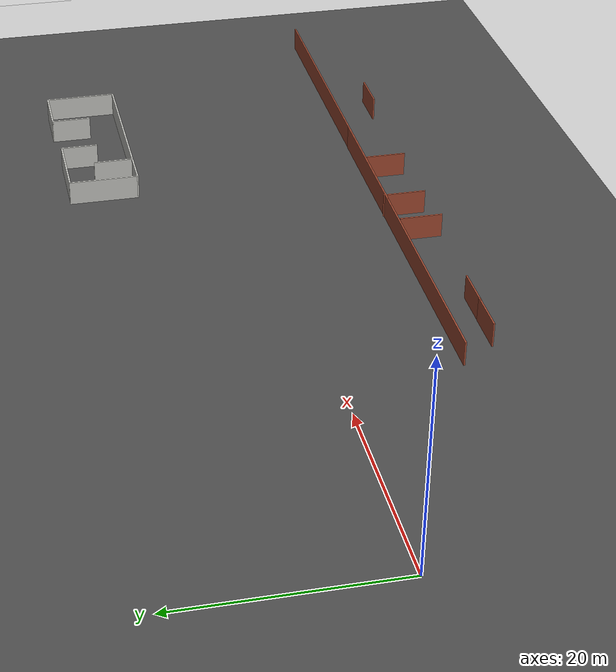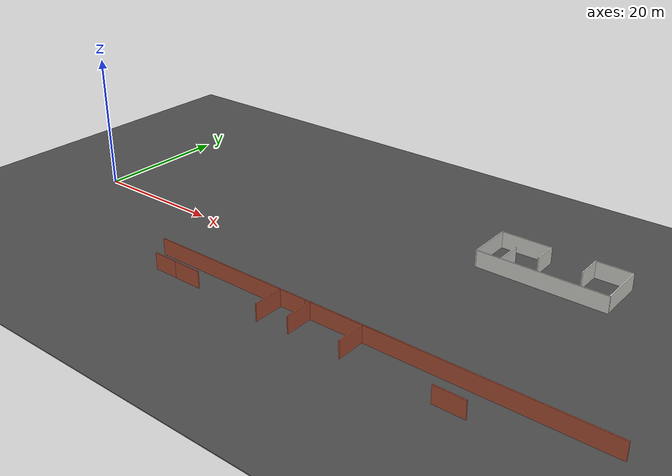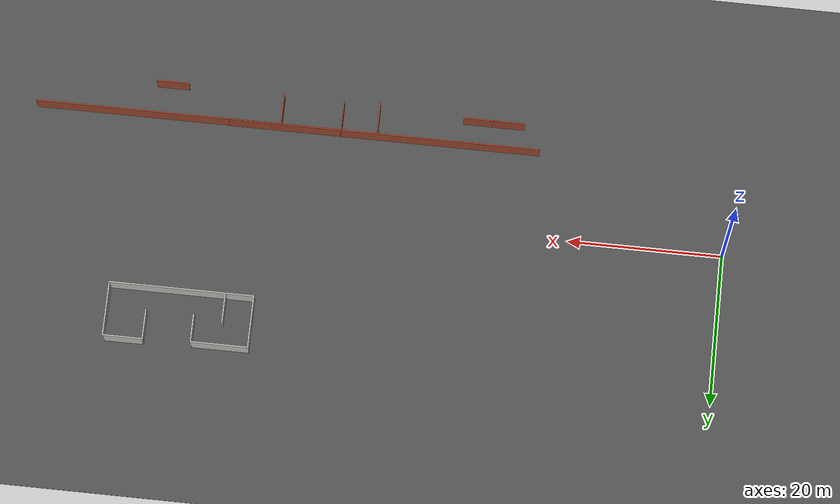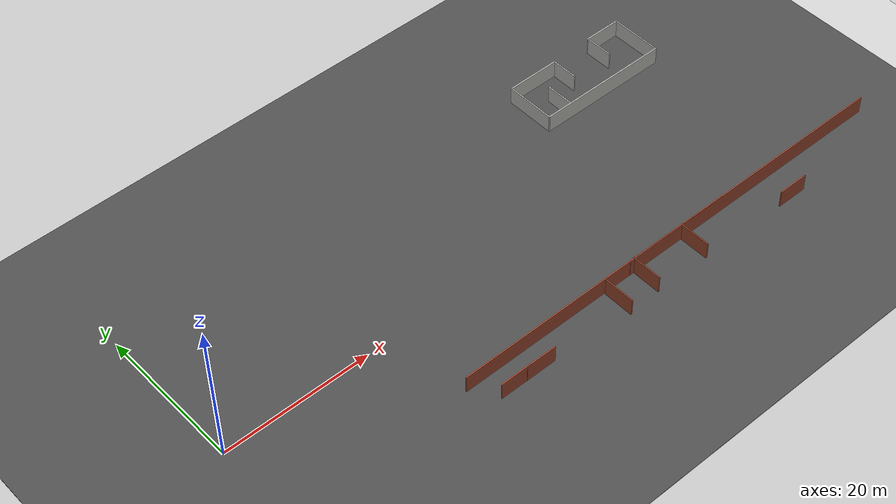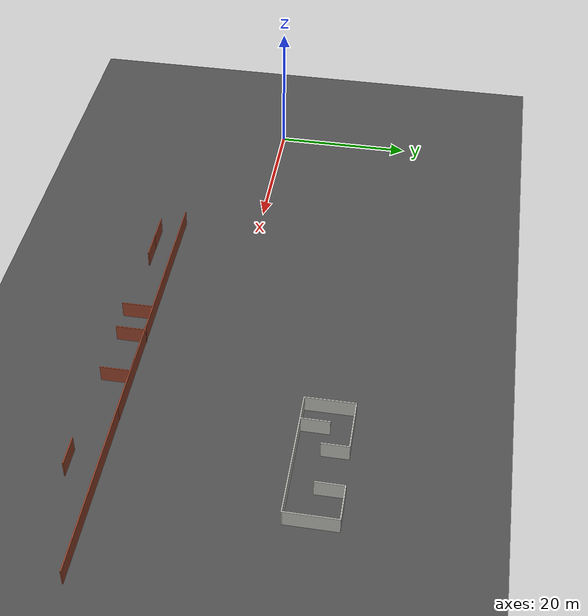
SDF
<sdf version="1.6">
 <world name="default">
  <model name="ground_plane">
   <static>1</static>
   <link name="link">
    <collision name="collision">
     <geometry><plane><normal>0 0 1</normal><size>200 200</size></plane></geometry>
     <surface><friction><ode><mu>100</mu><mu2>50</mu2></ode></friction></surface>
    </collision>
    <visual name="visual">
     <cast_shadows>0</cast_shadows>
     <geometry><plane><normal>0 0 1</normal><size>200 200</size></plane></geometry>
     <material>
      <script><uri>file://media/materials/scripts/gazebo.material</uri><name>Gazebo/Grey</name></script>
     </material>
    </visual>
   </link>
  </model>
  <model name="asphalt_plane">
   <static>1</static>
   <link name="link">
    <collision name="collision"><geometry><box><size>200 200 0.1</size></box></geometry></collision>
    <visual name="visual">
     <cast_shadows>0</cast_shadows>
     <geometry><box><size>200 200 0.1</size></box></geometry>
     <material>
      <script>
       <uri>model://asphalt_plane/materials/scripts</uri>
       <uri>model://asphalt_plane/materials/textures</uri>
       <name>vrc/asphalt</name>
      </script>
     </material>
    </visual>
   </link>
  </model>
  <model name="brick_longwall_clone_clone">
   <pose>70.133 -11.2921 0 0 -0 0</pose>
   <link name="Wall_0">
    <collision name="Wall_0_Collision">
     <geometry><box><size>40.5 0.15 2.5</size></box></geometry>
     <pose>0 0 1.25 0 -0 0</pose>
    </collision>
    <visual name="Wall_0_Visual">
     <pose>0 0 1.25 0 -0 0</pose>
     <geometry><box><size>40.5 0.15 2.5</size></box></geometry>
     <material>
      <script><uri>file://media/materials/scripts/gazebo.material</uri><name>Gazebo/Bricks</name></script>
      <ambient>1 1 1 1</ambient>
     </material>
    </visual>
    <pose>1e-06 0 0 0 -0 0</pose>
   </link>
   <static>1</static>
  </model>
  <model name="brick_longwall_clone_clone_clone">
   <pose>44.9259 -11.2589 0 0 -0 0</pose>
   <link name="Wall_0">
    <collision name="Wall_0_Collision">
     <geometry><box><size>40.5 0.15 2.5</size></box></geometry>
     <pose>0 0 1.25 0 -0 0</pose>
    </collision>
    <visual name="Wall_0_Visual">
     <pose>0 0 1.25 0 -0 0</pose>
     <geometry><box><size>40.5 0.15 2.5</size></box></geometry>
     <material>
      <script><uri>file://media/materials/scripts/gazebo.material</uri><name>Gazebo/Bricks</name></script>
      <ambient>1 1 1 1</ambient>
     </material>
    </visual>
    <pose>1e-06 0 0 0 -0 0</pose>
   </link>
   <static>1</static>
  </model>
  <model name="brick_worlds_1_clone_1_clone_clone_0_clone_6">
   <pose>45.8934 -13.5337 0 0 -0 0</pose>
   <link name="Wall_0">
    <collision name="Wall_0_Collision">
     <geometry><box><size>4.25 0.15 2.5</size></box></geometry>
     <pose>0 0 1.25 0 -0 0</pose>
    </collision>
    <visual name="Wall_0_Visual">
     <pose>0 0 1.25 0 -0 0</pose>
     <geometry><box><size>4.25 0.15 2.5</size></box></geometry>
     <material>
      <script><uri>file://media/materials/scripts/gazebo.material</uri><name>Gazebo/Bricks</name></script>
      <ambient>1 1 1 1</ambient>
     </material>
    </visual>
    <pose>0 -0 0 0 -0 1.5708</pose>
   </link>
   <static>1</static>
  </model>
  <model name="brick_worlds_1_clone_clone_0_clone_0">
   <pose>58.4374 -13.3357 0 0 -0 0</pose>
   <link name="Wall_0">
    <collision name="Wall_0_Collision">
     <geometry><box><size>4.25 0.15 2.5</size></box></geometry>
     <pose>0 0 1.25 0 -0 0</pose>
    </collision>
    <visual name="Wall_0_Visual">
     <pose>0 0 1.25 0 -0 0</pose>
     <geometry><box><size>4.25 0.15 2.5</size></box></geometry>
     <material>
      <script><uri>file://media/materials/scripts/gazebo.material</uri><name>Gazebo/Bricks</name></script>
      <ambient>1 1 1 1</ambient>
     </material>
    </visual>
    <pose>0 -0 0 0 -0 1.5708</pose>
   </link>
   <static>1</static>
  </model>
  <model name="brick_worlds_1_clone_0_clone_clone_0_clone_3_clone_0">
   <pose>73.0187 -15.5975 0 0 0 -1.57092</pose>
   <link name="Wall_0">
    <collision name="Wall_0_Collision">
     <geometry><box><size>4.25 0.15 2.5</size></box></geometry>
     <pose>0 0 1.25 0 -0 0</pose>
    </collision>
    <visual name="Wall_0_Visual">
     <pose>0 0 1.25 0 -0 0</pose>
     <geometry><box><size>4.25 0.15 2.5</size></box></geometry>
     <material>
      <script><uri>file://media/materials/scripts/gazebo.material</uri><name>Gazebo/Bricks</name></script>
      <ambient>1 1 1 1</ambient>
     </material>
    </visual>
    <pose>0 -0 0 0 -0 1.5708</pose>
   </link>
   <static>1</static>
  </model>
  <model name="brick_worlds_1_clone_1_clone_0_clone_0">
   <pose>50.6047 -13.1994 0 0 -0 0</pose>
   <link name="Wall_0">
    <collision name="Wall_0_Collision">
     <geometry><box><size>4.25 0.15 2.5</size></box></geometry>
     <pose>0 0 1.25 0 -0 0</pose>
    </collision>
    <visual name="Wall_0_Visual">
     <pose>0 0 1.25 0 -0 0</pose>
     <geometry><box><size>4.25 0.15 2.5</size></box></geometry>
     <material>
      <script><uri>file://media/materials/scripts/gazebo.material</uri><name>Gazebo/Bricks</name></script>
      <ambient>1 1 1 1</ambient>
     </material>
    </visual>
    <pose>0 -0 0 0 -0 1.5708</pose>
   </link>
   <static>1</static>
  </model>
  <model name="brick_worlds_1_clone_0_clone_clone_0_clone_2_clone_0_clone">
   <pose>29.0439 -14.5766 0 0 0 -1.57092</pose>
   <link name="Wall_0">
    <collision name="Wall_0_Collision">
     <geometry><box><size>4.25 0.15 2.5</size></box></geometry>
     <pose>0 0 1.25 0 -0 0</pose>
    </collision>
    <visual name="Wall_0_Visual">
     <pose>0 0 1.25 0 -0 0</pose>
     <geometry><box><size>4.25 0.15 2.5</size></box></geometry>
     <material>
      <script><uri>file://media/materials/scripts/gazebo.material</uri><name>Gazebo/Bricks</name></script>
      <ambient>1 1 1 1</ambient>
     </material>
    </visual>
    <pose>0 -0 0 0 -0 1.5708</pose>
   </link>
   <static>1</static>
  </model>
  <model name="brick_worlds_1_clone_0_clone_clone_0_clone_2_clone_0_clone_0">
   <pose>32.7873 -14.5963 0 0 0 -1.57092</pose>
   <link name="Wall_0">
    <collision name="Wall_0_Collision">
     <geometry><box><size>4.25 0.15 2.5</size></box></geometry>
     <pose>0 0 1.25 0 -0 0</pose>
    </collision>
    <visual name="Wall_0_Visual">
     <pose>0 0 1.25 0 -0 0</pose>
     <geometry><box><size>4.25 0.15 2.5</size></box></geometry>
     <material>
      <script><uri>file://media/materials/scripts/gazebo.material</uri><name>Gazebo/Bricks</name></script>
      <ambient>1 1 1 1</ambient>
     </material>
    </visual>
    <pose>0 -0 0 0 -0 1.5708</pose>
   </link>
   <static>1</static>
  </model>
  <model name="concrete_room2_2">
   <pose>68.5675 15.766 0 0 -0 0</pose>
   <link name="Wall_61">
    <collision name="Wall_61_Collision">
     <geometry><box><size>5.25 0.15 2.5</size></box></geometry>
     <pose>0 0 1.25 0 -0 0</pose>
    </collision>
    <visual name="Wall_61_Visual">
     <pose>0 0 1.25 0 -0 0</pose>
     <geometry><box><size>5.25 0.15 2.5</size></box></geometry>
     <material>
      <script><uri>file://media/materials/scripts/gazebo.material</uri><name>Gazebo/CeilingTiled</name></script>
      <ambient>1 1 1 1</ambient>
     </material>
     <meta><layer>0</layer></meta>
    </visual>
    <pose>6.75 3.55 0 0 -0 0</pose>
   </link>
   <link name="Wall_62">
    <collision name="Wall_62_Collision">
     <geometry><box><size>7.25 0.15 2.5</size></box></geometry>
     <pose>0 0 1.25 0 -0 0</pose>
    </collision>
    <visual name="Wall_62_Visual">
     <pose>0 0 1.25 0 -0 0</pose>
     <geometry><box><size>7.25 0.15 2.5</size></box></geometry>
     <material>
      <script><uri>file://media/materials/scripts/gazebo.material</uri><name>Gazebo/CeilingTiled</name></script>
      <ambient>1 1 1 1</ambient>
     </material>
     <meta><layer>0</layer></meta>
    </visual>
    <pose>9.3 0 0 0 0 -1.5708</pose>
   </link>
   <link name="Wall_63">
    <collision name="Wall_63_Collision">
     <geometry><box><size>18.75 0.15 2.5</size></box></geometry>
     <pose>0 0 1.25 0 -0 0</pose>
    </collision>
    <visual name="Wall_63_Visual">
     <pose>0 0 1.25 0 -0 0</pose>
     <geometry><box><size>18.75 0.15 2.5</size></box></geometry>
     <material>
      <script><uri>file://media/materials/scripts/gazebo.material</uri><name>Gazebo/CeilingTiled</name></script>
      <ambient>1 1 1 1</ambient>
     </material>
     <meta><layer>0</layer></meta>
    </visual>
    <pose>0 -3.55 0 0 -0 3.14159</pose>
   </link>
   <link name="Wall_64">
    <collision name="Wall_64_Collision">
     <geometry><box><size>7 0.15 2.5</size></box></geometry>
     <pose>0 0 1.25 0 -0 0</pose>
    </collision>
    <visual name="Wall_64_Visual">
     <pose>0 0 1.25 0 -0 0</pose>
     <geometry><box><size>7 0.15 2.5</size></box></geometry>
     <material>
      <script><uri>file://media/materials/scripts/gazebo.material</uri><name>Gazebo/CeilingTiled</name></script>
      <ambient>1 1 1 1</ambient>
     </material>
     <meta><layer>0</layer></meta>
    </visual>
    <pose>-9.3 -0.125 0 0 -0 1.5708</pose>
   </link>
   <link name="Wall_65">
    <collision name="Wall_65_Collision">
     <geometry><box><size>7.5 0.15 2.5</size></box></geometry>
     <pose>0 0 1.25 0 -0 0</pose>
    </collision>
    <visual name="Wall_65_Visual">
     <pose>0 0 1.25 0 -0 0</pose>
     <geometry><box><size>7.5 0.15 2.5</size></box></geometry>
     <material>
      <script><uri>file://media/materials/scripts/gazebo.material</uri><name>Gazebo/CeilingTiled</name></script>
      <ambient>1 1 1 1</ambient>
     </material>
     <meta><layer>0</layer></meta>
    </visual>
    <pose>-5.625 3.3 0 0 -0 0</pose>
   </link>
   <link name="Wall_66">
    <collision name="Wall_66_Collision">
     <geometry><box><size>3.75 0.15 2.5</size></box></geometry>
     <pose>0 0 1.25 0 -0 0</pose>
    </collision>
    <visual name="Wall_66_Visual">
     <pose>0 0 1.25 0 -0 0</pose>
     <geometry><box><size>3.75 0.15 2.5</size></box></geometry>
     <material>
      <script><uri>file://media/materials/scripts/gazebo.material</uri><name>Gazebo/CeilingTiled</name></script>
      <ambient>1 1 1 1</ambient>
     </material>
     <meta><layer>0</layer></meta>
    </visual>
    <pose>-1.95 1.5 0 0 0 -1.5708</pose>
   </link>
   <link name="Wall_70">
    <collision name="Wall_70_Collision">
     <geometry><box><size>4 0.15 2.5</size></box></geometry>
     <pose>0 0 1.25 0 -0 0</pose>
    </collision>
    <visual name="Wall_70_Visual">
     <pose>0 0 1.25 0 -0 0</pose>
     <geometry><box><size>4 0.15 2.5</size></box></geometry>
     <material>
      <script><uri>file://media/materials/scripts/gazebo.material</uri><name>Gazebo/CeilingTiled</name></script>
      <ambient>1 1 1 1</ambient>
     </material>
     <meta><layer>0</layer></meta>
    </visual>
    <pose>4.2 1.625 0 0 0 -1.5708</pose>
   </link>
   <link name="Wall_72">
    <collision name="Wall_72_Collision">
     <geometry><box><size>4 0.15 2.5</size></box></geometry>
     <pose>0 0 1.25 0 -0 0</pose>
    </collision>
    <visual name="Wall_72_Visual">
     <pose>0 0 1.25 0 -0 0</pose>
     <geometry><box><size>4 0.15 2.5</size></box></geometry>
     <material>
      <script><uri>file://media/materials/scripts/gazebo.material</uri><name>Gazebo/CeilingTiled</name></script>
      <ambient>1 1 1 1</ambient>
     </material>
     <meta><layer>0</layer></meta>
    </visual>
    <pose>-5.65005 -1.59593 0 0 -0 1.5708</pose>
   </link>
   <static>1</static>
  </model>
 </world>
</sdf>
